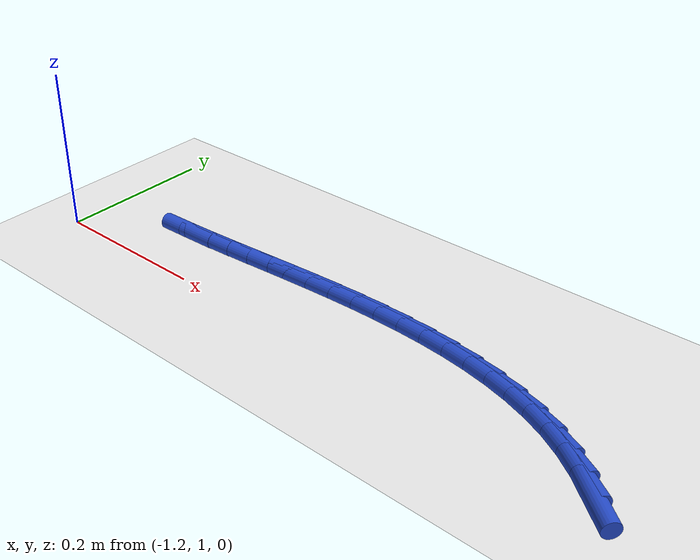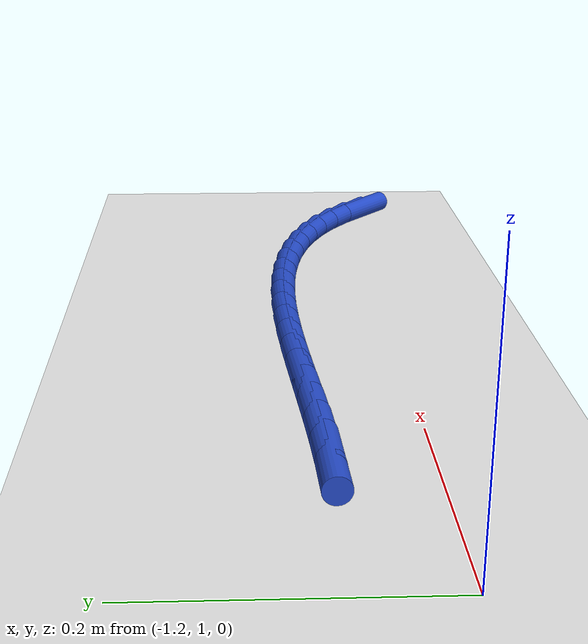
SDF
<sdf version="1.6">
 <world name="default">
  <model name="ground_plane">
   <static>1</static>
   <link name="link">
    <collision name="collision">
     <geometry><plane><normal>0 0 1</normal><size>100 100</size></plane></geometry>
     <surface><friction><ode><mu>100</mu><mu2>50</mu2></ode></friction></surface>
    </collision>
    <visual name="visual">
     <cast_shadows>0</cast_shadows>
     <geometry><plane><normal>0 0 1</normal><size>100 100</size></plane></geometry>
     <material>
      <script><uri>file://media/materials/scripts/gazebo.material</uri><name>Gazebo/WhiteGlow</name></script>
     </material>
    </visual>
   </link>
  </model>
  <model name="line">
   <link name="link_37">
    <pose>-0.4764931418747708 0.991753211555845 0.01 0 1.57 -0.713768432492929</pose>
    <collision name="collision">
     <geometry><cylinder><radius>0.01</radius><length>0.08</length></cylinder></geometry>
    </collision>
    <visual name="visual">
     <material>
      <script><name>Gazebo/Blue</name><uri>file://media/materials/scripts/gazebo.material</uri></script>
     </material>
     <geometry><cylinder><radius>0.01</radius><length>0.08</length></cylinder></geometry>
    </visual>
   </link>
   <link name="link_38">
    <pose>-0.4983506737795034 1.0106840745918744 0.01 0 1.57 -0.6211822560639534</pose>
    <collision name="collision">
     <geometry><cylinder><radius>0.01</radius><length>0.08</length></cylinder></geometry>
    </collision>
    <visual name="visual">
     <material>
      <script><name>Gazebo/Blue</name><uri>file://media/materials/scripts/gazebo.material</uri></script>
     </material>
     <geometry><cylinder><radius>0.01</radius><length>0.08</length></cylinder></geometry>
    </visual>
   </link>
   <link name="link_39">
    <pose>-0.5215717670807007 1.0273033025566032 0.01 0 1.57 -0.5216711507332075</pose>
    <collision name="collision">
     <geometry><cylinder><radius>0.01</radius><length>0.08</length></cylinder></geometry>
    </collision>
    <visual name="visual">
     <material>
      <script><name>Gazebo/Blue</name><uri>file://media/materials/scripts/gazebo.material</uri></script>
     </material>
     <geometry><cylinder><radius>0.01</radius><length>0.08</length></cylinder></geometry>
    </visual>
   </link>
   <link name="link_40">
    <pose>-0.5462086709093774 1.0414641749837474 0.01 0 1.57 -0.42819718281324015</pose>
    <collision name="collision">
     <geometry><cylinder><radius>0.01</radius><length>0.08</length></cylinder></geometry>
    </collision>
    <visual name="visual">
     <material>
      <script><name>Gazebo/Blue</name><uri>file://media/materials/scripts/gazebo.material</uri></script>
     </material>
     <geometry><cylinder><radius>0.01</radius><length>0.08</length></cylinder></geometry>
    </visual>
   </link>
   <link name="link_41">
    <pose>-0.5721547557172986 1.0533070270579885 0.01 0 1.57 -0.3433644135498441</pose>
    <collision name="collision">
     <geometry><cylinder><radius>0.01</radius><length>0.08</length></cylinder></geometry>
    </collision>
    <visual name="visual">
     <material>
      <script><name>Gazebo/Blue</name><uri>file://media/materials/scripts/gazebo.material</uri></script>
     </material>
     <geometry><cylinder><radius>0.01</radius><length>0.08</length></cylinder></geometry>
    </visual>
   </link>
   <link name="link_42">
    <pose>-0.5992843564667999 1.0630065865259022 0.01 0 1.57 -0.2676881430412302</pose>
    <collision name="collision">
     <geometry><cylinder><radius>0.01</radius><length>0.08</length></cylinder></geometry>
    </collision>
    <visual name="visual">
     <material>
      <script><name>Gazebo/Blue</name><uri>file://media/materials/scripts/gazebo.material</uri></script>
     </material>
     <geometry><cylinder><radius>0.01</radius><length>0.08</length></cylinder></geometry>
    </visual>
   </link>
   <link name="link_43">
    <pose>-0.627471808120217 1.0707375811340618 0.01 0 1.57 -0.20113163423391656</pose>
    <collision name="collision">
     <geometry><cylinder><radius>0.01</radius><length>0.08</length></cylinder></geometry>
    </collision>
    <visual name="visual">
     <material>
      <script><name>Gazebo/Blue</name><uri>file://media/materials/scripts/gazebo.material</uri></script>
     </material>
     <geometry><cylinder><radius>0.01</radius><length>0.08</length></cylinder></geometry>
    </visual>
   </link>
   <link name="link_44">
    <pose>-0.6565914456398854 1.0766747386290427 0.01 0 1.57 -0.1433010617571937</pose>
    <collision name="collision">
     <geometry><cylinder><radius>0.01</radius><length>0.08</length></cylinder></geometry>
    </collision>
    <visual name="visual">
     <material>
      <script><name>Gazebo/Blue</name><uri>file://media/materials/scripts/gazebo.material</uri></script>
     </material>
     <geometry><cylinder><radius>0.01</radius><length>0.08</length></cylinder></geometry>
    </visual>
   </link>
   <link name="link_45">
    <pose>-0.6865176039881408 1.08099278675742 0.01 0 1.57 -0.09361471595546612</pose>
    <collision name="collision">
     <geometry><cylinder><radius>0.01</radius><length>0.08</length></cylinder></geometry>
    </collision>
    <visual name="visual">
     <material>
      <script><name>Gazebo/Blue</name><uri>file://media/materials/scripts/gazebo.material</uri></script>
     </material>
     <geometry><cylinder><radius>0.01</radius><length>0.08</length></cylinder></geometry>
    </visual>
   </link>
   <link name="link_46">
    <pose>-0.7171246181273184 1.0838664532657676 0.01 0 1.57 -0.0514276282113222</pose>
    <collision name="collision">
     <geometry><cylinder><radius>0.01</radius><length>0.08</length></cylinder></geometry>
    </collision>
    <visual name="visual">
     <material>
      <script><name>Gazebo/Blue</name><uri>file://media/materials/scripts/gazebo.material</uri></script>
     </material>
     <geometry><cylinder><radius>0.01</radius><length>0.08</length></cylinder></geometry>
    </visual>
   </link>
   <link name="link_47">
    <pose>-0.7482868230197548 1.0854704659006609 0.01 0 1.57 -0.016113154891228592</pose>
    <collision name="collision">
     <geometry><cylinder><radius>0.01</radius><length>0.08</length></cylinder></geometry>
    </collision>
    <visual name="visual">
     <material>
      <script><name>Gazebo/Blue</name><uri>file://media/materials/scripts/gazebo.material</uri></script>
     </material>
     <geometry><cylinder><radius>0.01</radius><length>0.08</length></cylinder></geometry>
    </visual>
   </link>
   <link name="link_48">
    <pose>-0.7798785536277849 1.0859795524086742 0.01 0 1.57 0.012888587150228203</pose>
    <collision name="collision">
     <geometry><cylinder><radius>0.01</radius><length>0.08</length></cylinder></geometry>
    </collision>
    <visual name="visual">
     <material>
      <script><name>Gazebo/Blue</name><uri>file://media/materials/scripts/gazebo.material</uri></script>
     </material>
     <geometry><cylinder><radius>0.01</radius><length>0.08</length></cylinder></geometry>
    </visual>
   </link>
   <link name="link_49">
    <pose>-0.8117741449137442 1.0855684405363824 0.01 0 1.57 0.03604443676746142</pose>
    <collision name="collision">
     <geometry><cylinder><radius>0.01</radius><length>0.08</length></cylinder></geometry>
    </collision>
    <visual name="visual">
     <material>
      <script><name>Gazebo/Blue</name><uri>file://media/materials/scripts/gazebo.material</uri></script>
     </material>
     <geometry><cylinder><radius>0.01</radius><length>0.08</length></cylinder></geometry>
    </visual>
   </link>
   <link name="link_50">
    <pose>-0.843847931839969 1.08441185803036 0.01 0 1.57 0.05371495783498905</pose>
    <collision name="collision">
     <geometry><cylinder><radius>0.01</radius><length>0.08</length></cylinder></geometry>
    </collision>
    <visual name="visual">
     <material>
      <script><name>Gazebo/Blue</name><uri>file://media/materials/scripts/gazebo.material</uri></script>
     </material>
     <geometry><cylinder><radius>0.01</radius><length>0.08</length></cylinder></geometry>
    </visual>
   </link>
   <link name="link_51">
    <pose>-0.8759742493687943 1.0826845326371823 0.01 0 1.57 0.06614764978109962</pose>
    <collision name="collision">
     <geometry><cylinder><radius>0.01</radius><length>0.08</length></cylinder></geometry>
    </collision>
    <visual name="visual">
     <material>
      <script><name>Gazebo/Blue</name><uri>file://media/materials/scripts/gazebo.material</uri></script>
     </material>
     <geometry><cylinder><radius>0.01</radius><length>0.08</length></cylinder></geometry>
    </visual>
   </link>
   <link name="link_52">
    <pose>-0.9080274324625561 1.0805611921034233 0.01 0 1.57 0.07347207077993372</pose>
    <collision name="collision">
     <geometry><cylinder><radius>0.01</radius><length>0.08</length></cylinder></geometry>
    </collision>
    <visual name="visual">
     <material>
      <script><name>Gazebo/Blue</name><uri>file://media/materials/scripts/gazebo.material</uri></script>
     </material>
     <geometry><cylinder><radius>0.01</radius><length>0.08</length></cylinder></geometry>
    </visual>
   </link>
   <link name="link_53">
    <pose>-0.9398818160835898 1.0782165641756585 0.01 0 1.57 0.0756937882469786</pose>
    <collision name="collision">
     <geometry><cylinder><radius>0.01</radius><length>0.08</length></cylinder></geometry>
    </collision>
    <visual name="visual">
     <material>
      <script><name>Gazebo/Blue</name><uri>file://media/materials/scripts/gazebo.material</uri></script>
     </material>
     <geometry><cylinder><radius>0.01</radius><length>0.08</length></cylinder></geometry>
    </visual>
   </link>
   <link name="link_54">
    <pose>-0.9714117351942313 1.0758253766004617 0.01 0 1.57 0.07268902405615534</pose>
    <collision name="collision">
     <geometry><cylinder><radius>0.01</radius><length>0.08</length></cylinder></geometry>
    </collision>
    <visual name="visual">
     <material>
      <script><name>Gazebo/Blue</name><uri>file://media/materials/scripts/gazebo.material</uri></script>
     </material>
     <geometry><cylinder><radius>0.01</radius><length>0.08</length></cylinder></geometry>
    </visual>
   </link>
   <link name="link_55">
    <pose>-1.0024930394067058 1.0735621194064116 0.01 0 1.57 0.06445204321105084</pose>
    <collision name="collision">
     <geometry><cylinder><radius>0.01</radius><length>0.08</length></cylinder></geometry>
    </collision>
    <visual name="visual">
     <material>
      <script><name>Gazebo/Blue</name><uri>file://media/materials/scripts/gazebo.material</uri></script>
     </material>
     <geometry><cylinder><radius>0.01</radius><length>0.08</length></cylinder></geometry>
    </visual>
   </link>
   <link name="link_56">
    <pose>-1.0330906236823774 1.0715873073251114 0.01 0 1.57 0.05116537946690907</pose>
    <collision name="collision">
     <geometry><cylinder><radius>0.01</radius><length>0.08</length></cylinder></geometry>
    </collision>
    <visual name="visual">
     <material>
      <script><name>Gazebo/Blue</name><uri>file://media/materials/scripts/gazebo.material</uri></script>
     </material>
     <geometry><cylinder><radius>0.01</radius><length>0.08</length></cylinder></geometry>
    </visual>
   </link>
   <link name="link_57">
    <pose>-1.0633063591276122 1.0700399572522505 0.01 0 1.57 0.03280245692929859</pose>
    <collision name="collision">
     <geometry><cylinder><radius>0.01</radius><length>0.08</length></cylinder></geometry>
    </collision>
    <visual name="visual">
     <material>
      <script><name>Gazebo/Blue</name><uri>file://media/materials/scripts/gazebo.material</uri></script>
     </material>
     <geometry><cylinder><radius>0.01</radius><length>0.08</length></cylinder></geometry>
    </visual>
   </link>
  </model>
 </world>
</sdf>
